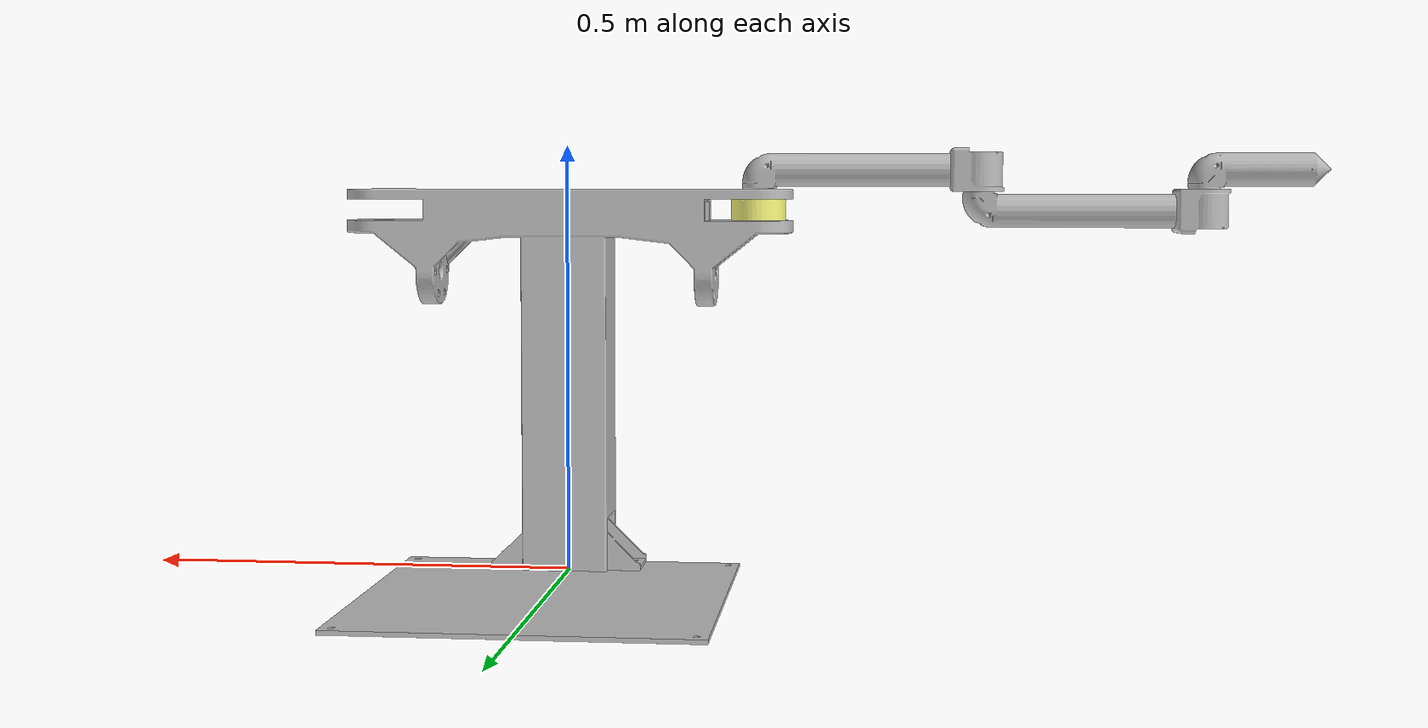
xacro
<?xml version="1.0" encoding="utf-8"?>
<robot name="dual_arm_mg_left" xmlns:xacro="http://www.ros.org/wiki/xacro">

  <xacro:include filename="gazebo.xacro"/>

  <link name="world"/>

  <link name="link_base">
    <inertial>
      <origin
        xyz="-6.1751E-17 0.040265 0.24367"
        rpy="0 0 0" />
      <mass
        value="3.3711" />
      <inertia
        ixx="0.023757"
        ixy="8.7804E-10"
        ixz="-7.8605E-19"
        iyy="0.024989"
        iyz="-4.3264E-18"
        izz="0.025822" />
    </inertial>
    <visual>
      <origin
        xyz="0 0 0"
        rpy="0 0 0" />
      <geometry>
        <mesh
          filename="file://$(find dual_arm_mg_left)/meshes/link_base.STL" />
      </geometry>
      <material
        name="">
        <color
          rgba="0.75294 0.75294 0.75294 1" />
      </material>
    </visual>
    <collision>
      <origin
        xyz="0 0 0"
        rpy="0 0 0" />
      <geometry>
        <mesh
          filename="file://$(find dual_arm_mg_left)/meshes/link_base.STL" />
      </geometry>
    </collision>
  </link>

  <joint name="world_base" type="fixed">
    <parent link="world"/>
    <child link="link_base"/>
    <origin xyz="0 0 0" rpy="0 0 0"/>
  </joint>

  <link name="link_01">
    <inertial>
      <origin
        xyz="-7.9725E-06 1.8305E-06 -0.018327"
        rpy="0 0 0" />
      <mass
        value="0.10237" />
      <inertia
        ixx="3.1248E-05"
        ixy="-3.5816E-09"
        ixz="-4.2872E-08"
        iyy="3.1248E-05"
        iyz="-2.4917E-10"
        izz="5.035E-05" />
    </inertial>
    <visual>
      <origin
        xyz="0 0 0"
        rpy="0 0 0" />
      <geometry>
        <mesh
          filename="file://$(find dual_arm_mg_left)/meshes/link_01.STL" />
      </geometry>
      <material
        name="">
        <color
          rgba="1 1 0.50196 1" />
      </material>
    </visual>
    <collision>
      <origin
        xyz="0 0 0"
        rpy="0 0 0" />
      <geometry>
        <mesh
          filename="file://$(find dual_arm_mg_left)/meshes/link_01.STL" />
      </geometry>
    </collision>
  </link>

  <joint name="joint_01" type="fixed">
    <origin
      xyz="-0.224 0 0.4465"
      rpy="0 0 0" />
    <parent
      link="link_base" />
    <child
      link="link_01" />
    <axis
      xyz="0 0 0" />
  </joint>

  <link name="link_11">
    <inertial>
      <origin
        xyz="0.18266 4.0216E-05 0.022592"
        rpy="0 0 0" />
      <mass
        value="0.23333" />
      <inertia
        ixx="7.5902E-05"
        ixy="4.6038E-09"
        ixz="3.0086E-07"
        iyy="0.00020275"
        iyz="8.3576E-09"
        izz="0.00021877" />
    </inertial>
    <visual>
      <origin
        xyz="0 0 0"
        rpy="0 0 0" />
      <geometry>
        <mesh
          filename="file://$(find dual_arm_mg_left)/meshes/link_11.STL" />
      </geometry>
      <material
        name="">
        <color
          rgba="0.75294 0.75294 0.75294 1" />
      </material>
    </visual>
    <collision>
      <origin
        xyz="0 0 0"
        rpy="0 0 0" />
      <geometry>
        <mesh
          filename="file://$(find dual_arm_mg_left)/meshes/link_11.STL" />
      </geometry>
    </collision>
  </link>

  <joint name="joint_11" type="revolute">
    <origin
      xyz="0 0 0"
      rpy="0 0 3.1416" />
    <parent
      link="link_01" />
    <child
      link="link_11" />
    <axis
      xyz="0 0 1" />
    <limit
      lower="-3.1416"
      upper="3.1416"
      effort="100"
      velocity="1000" />
    <dynamics
      damping="0.05"
      friction="0" />
  </joint>

  <link name="link_21">
    <inertial>
      <origin
        xyz="0.18609 -4.7971E-05 -0.022546"
        rpy="0 0 0" />
      <mass
        value="0.22941" />
      <inertia
        ixx="7.4854E-05"
        ixy="-1.1043E-08"
        ixz="-7.4492E-07"
        iyy="0.00020059"
        iyz="-1.9149E-08"
        izz="0.00021668" />
    </inertial>
    <visual>
      <origin
        xyz="0 0 0"
        rpy="0 0 0" />
      <geometry>
        <mesh
          filename="file://$(find dual_arm_mg_left)/meshes/link_21.STL" />
      </geometry>
      <material
        name="">
        <color
          rgba="0.75294 0.75294 0.75294 1" />
      </material>
    </visual>
    <collision>
      <origin
        xyz="0 0 0"
        rpy="0 0 0" />
      <geometry>
        <mesh
          filename="file://$(find dual_arm_mg_left)/meshes/link_21.STL" />
      </geometry>
    </collision>
  </link>

  <joint name="joint_21" type="revolute">
    <origin
      xyz="0.253 0 0.005"
      rpy="0 0 0" />
    <parent
      link="link_11" />
    <child
      link="link_21" />
    <axis
      xyz="0 0 -1" />
    <limit
      lower="-3.1416"
      upper="3.1416"
      effort="100"
      velocity="1000" />
    <dynamics
      damping="0.05"
      friction="0" />
  </joint>

  <link name="link_31">
    <inertial>
      <origin
        xyz="0.051237 -4.4684E-08 0.022159"
        rpy="0 0 0" />
      <mass
        value="0.071538" />
      <inertia
        ixx="1.8609E-05"
        ixy="-1.8853E-11"
        ixz="-3.3532E-06"
        iyy="3.2633E-05"
        iyz="1.0681E-10"
        izz="3.2135E-05" />
    </inertial>
    <visual>
      <origin
        xyz="0 0 0"
        rpy="0 0 0" />
      <geometry>
        <mesh
          filename="file://$(find dual_arm_mg_left)/meshes/link_31.STL" />
      </geometry>
      <material
        name="">
        <color
          rgba="0.75294 0.75294 0.75294 1" />
      </material>
    </visual>
    <collision>
      <origin
        xyz="0 0 0"
        rpy="0 0 0" />
      <geometry>
        <mesh
          filename="file://$(find dual_arm_mg_left)/meshes/link_31.STL" />
      </geometry>
    </collision>
  </link>

  <joint name="joint_31" type="revolute">
    <origin
      xyz="0.253 0 -0.005"
      rpy="0 0 0" />
    <parent
      link="link_21" />
    <child
      link="link_31" />
    <axis
      xyz="0 0 1" />
    <limit
      lower="-3.1416"
      upper="3.1416"
      effort="100"
      velocity="1000" />
    <dynamics
      damping="0.05"
      friction="0" />
  </joint>

  <transmission name="tran11">
    <type>transmission_interface/SimpleTransmission</type>
    <joint name="joint_11">
        <hardwareInterface>PositionJointInterface</hardwareInterface>
        <hardwareInterface>EffortJointInterface</hardwareInterface>
    </joint>
  </transmission>

  <transmission name="tran2">
    <type>transmission_interface/SimpleTransmission</type>
    <joint name="joint_21">
      <hardwareInterface>PositionJointInterface</hardwareInterface>
      <hardwareInterface>EffortJointInterface</hardwareInterface>
    </joint>
  </transmission>

  <transmission name="tran3">
    <type>transmission_interface/SimpleTransmission</type>
    <joint name="joint_31">
      <hardwareInterface>PositionJointInterface</hardwareInterface>
      <hardwareInterface>EffortJointInterface</hardwareInterface>
    </joint>
  </transmission>
</robot>
